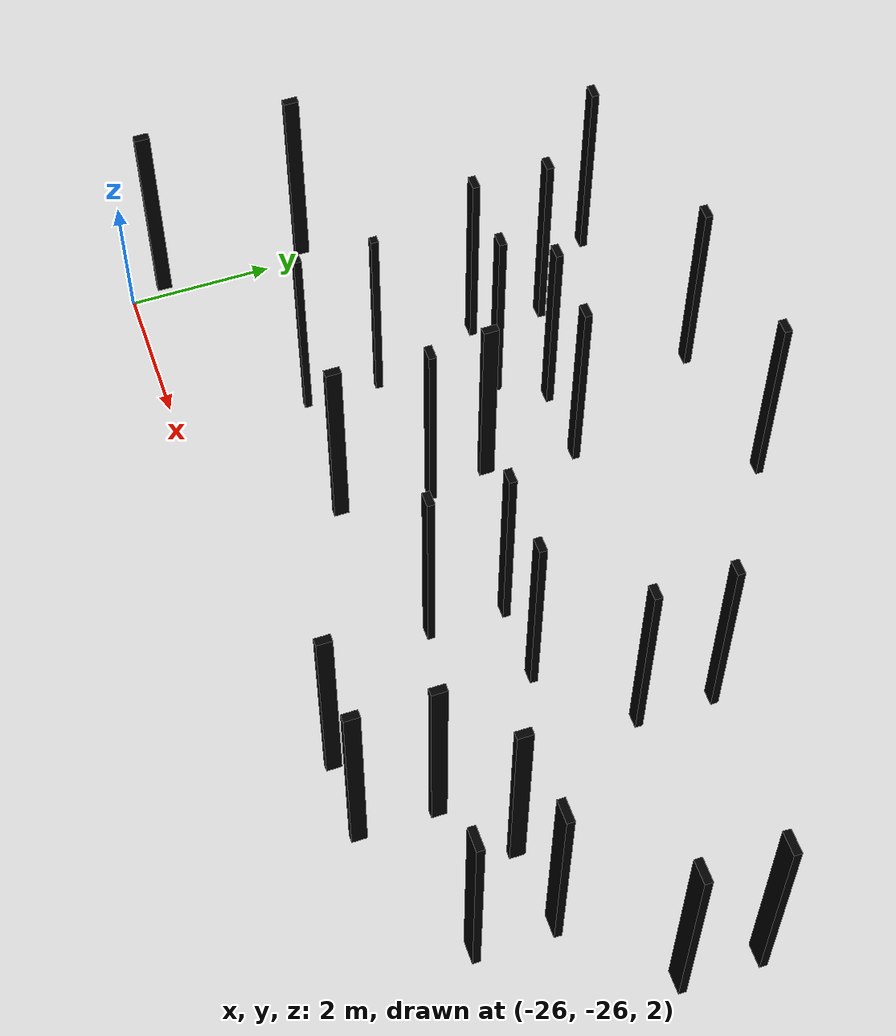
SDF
<sdf version="1.6">
 <world name="inspect">
  <light name="sun" type="directional">
   <cast_shadows>0</cast_shadows>
   <pose>0 0 10 0 -0 0</pose>
   <diffuse>1 1 1 1</diffuse>
   <specular>0.2 0.2 0.2 1</specular>
   <attenuation>
    <range>1000</range>
    <constant>0.9</constant>
    <linear>0.01</linear>
    <quadratic>0.001</quadratic>
   </attenuation>
   <direction>-0.5 -0.5 -1</direction>
  </light>
  <physics name="default_physics" default="0" type="ode">
   <max_step_size>0.005</max_step_size>
   <real_time_factor>1</real_time_factor>
   <real_time_update_rate>250</real_time_update_rate>
  </physics>
  <scene><ambient>1 1 1 1</ambient><background>1 1 1 1</background><shadows>1</shadows></scene>
  <spherical_coordinates>
   <surface_model>EARTH_WGS84</surface_model>
   <latitude_deg>0</latitude_deg>
   <longitude_deg>0</longitude_deg>
   <elevation>0</elevation>
   <heading_deg>0</heading_deg>
  </spherical_coordinates>
  <gravity>0 0 -9.8</gravity>
  <model name="box1_black">
   <static>true</static>
   <pose>-21.1 -24.4 4.3 0 0 0</pose>
   <link name="link">
    <collision name="collision"><geometry><box><size>0.1 0.2 3</size></box></geometry></collision>
    <visual name="visual">
     <geometry><box><size>0.1 0.2 3</size></box></geometry>
     <material><ambient>0 0 0 1</ambient><diffuse>0 0 0 1</diffuse></material>
    </visual>
   </link>
  </model>
  <model name="box2_green">
   <static>true</static>
   <pose>-15.8 -23.9 4.3 0 0 0</pose>
   <link name="link">
    <collision name="collision"><geometry><box><size>0.1 0.2 3</size></box></geometry></collision>
    <visual name="visual">
     <geometry><box><size>0.1 0.2 3</size></box></geometry>
     <material><ambient>0 0 0 1</ambient><diffuse>0 0 0 1</diffuse></material>
    </visual>
   </link>
  </model>
  <model name="box3_blue">
   <static>true</static>
   <pose>-13.7 -21.7 4.3 0 0 0</pose>
   <link name="link">
    <collision name="collision"><geometry><box><size>0.3 0.1 3</size></box></geometry></collision>
    <visual name="visual">
     <geometry><box><size>0.3 0.1 3</size></box></geometry>
     <material><ambient>0 0 0 1</ambient><diffuse>0 0 0 1</diffuse></material>
    </visual>
   </link>
  </model>
  <model name="box4_blue">
   <static>true</static>
   <pose>-17.0 -20.9 4.3 0 0 0</pose>
   <link name="link">
    <collision name="collision"><geometry><box><size>0.2 0.1 3</size></box></geometry></collision>
    <visual name="visual">
     <geometry><box><size>0.2 0.1 3</size></box></geometry>
     <material><ambient>0 0 0 1</ambient><diffuse>0 0 0 1</diffuse></material>
    </visual>
   </link>
  </model>
  <model name="box5_red">
   <static>true</static>
   <pose>-16.6 -24.6 4.3 0 0 0</pose>
   <link name="link">
    <collision name="collision"><geometry><box><size>0.1 0.2 3</size></box></geometry></collision>
    <visual name="visual">
     <geometry><box><size>0.1 0.2 3</size></box></geometry>
     <material><ambient>0 0 0 1</ambient><diffuse>0 0 0 1</diffuse></material>
    </visual>
   </link>
  </model>
  <model name="box6_yellow">
   <static>true</static>
   <pose>-22.9 -23.3 4.3 0 0 0</pose>
   <link name="link">
    <collision name="collision"><geometry><box><size>0.1 0.1 3</size></box></geometry></collision>
    <visual name="visual">
     <geometry><box><size>0.1 0.1 3</size></box></geometry>
     <material><ambient>0 0 0 1</ambient><diffuse>0 0 0 1</diffuse></material>
    </visual>
   </link>
  </model>
  <model name="box7_blue">
   <static>true</static>
   <pose>-22.4 -21.8 4.3 0 0 0</pose>
   <link name="link">
    <collision name="collision"><geometry><box><size>0.2 0.1 3</size></box></geometry></collision>
    <visual name="visual">
     <geometry><box><size>0.2 0.1 3</size></box></geometry>
     <material><ambient>0 0 0 1</ambient><diffuse>0 0 0 1</diffuse></material>
    </visual>
   </link>
  </model>
  <model name="box8_green">
   <static>true</static>
   <pose>-25.5 -25.6 4.3 0 0 0</pose>
   <link name="link">
    <collision name="collision"><geometry><box><size>0.1 0.2 3</size></box></geometry></collision>
    <visual name="visual">
     <geometry><box><size>0.1 0.2 3</size></box></geometry>
     <material><ambient>0 0 0 1</ambient><diffuse>0 0 0 1</diffuse></material>
    </visual>
   </link>
  </model>
  <model name="box9_black">
   <static>true</static>
   <pose>-14.8 -23.8 4.3 0 0 0</pose>
   <link name="link">
    <collision name="collision"><geometry><box><size>0.3 0.1 3</size></box></geometry></collision>
    <visual name="visual">
     <geometry><box><size>0.3 0.1 3</size></box></geometry>
     <material><ambient>0 0 0 1</ambient><diffuse>0 0 0 1</diffuse></material>
    </visual>
   </link>
  </model>
  <model name="box10_black">
   <static>true</static>
   <pose>-21.0 -21.2 4.3 0 0 0</pose>
   <link name="link">
    <collision name="collision"><geometry><box><size>0.2 0.1 3</size></box></geometry></collision>
    <visual name="visual">
     <geometry><box><size>0.2 0.1 3</size></box></geometry>
     <material><ambient>0 0 0 1</ambient><diffuse>0 0 0 1</diffuse></material>
    </visual>
   </link>
  </model>
  <model name="box10_black5">
   <static>true</static>
   <pose>-22.0 -21.2 4.3 0 0 0</pose>
   <link name="link">
    <collision name="collision"><geometry><box><size>0.2 0.1 3</size></box></geometry></collision>
    <visual name="visual">
     <geometry><box><size>0.2 0.1 3</size></box></geometry>
     <material><ambient>0 0 0 1</ambient><diffuse>0 0 0 1</diffuse></material>
    </visual>
   </link>
  </model>
  <model name="box10_black6">
   <static>true</static>
   <pose>-22.0 -19.2 4.3 0 0 0</pose>
   <link name="link">
    <collision name="collision"><geometry><box><size>0.2 0.1 3</size></box></geometry></collision>
    <visual name="visual">
     <geometry><box><size>0.2 0.1 3</size></box></geometry>
     <material><ambient>0 0 0 1</ambient><diffuse>0 0 0 1</diffuse></material>
    </visual>
   </link>
  </model>
  <model name="box1_black2">
   <static>true</static>
   <pose>-21.1 -22.4 4.3 0 0 0</pose>
   <link name="link">
    <collision name="collision"><geometry><box><size>0.1 0.2 3</size></box></geometry></collision>
    <visual name="visual">
     <geometry><box><size>0.1 0.2 3</size></box></geometry>
     <material><ambient>0 0 0 1</ambient><diffuse>0 0 0 1</diffuse></material>
    </visual>
   </link>
  </model>
  <model name="box2_green2">
   <static>true</static>
   <pose>-15.8 -23.9 4.3 0 0 0</pose>
   <link name="link">
    <collision name="collision"><geometry><box><size>0.1 0.2 3</size></box></geometry></collision>
    <visual name="visual">
     <geometry><box><size>0.1 0.2 3</size></box></geometry>
     <material><ambient>0 0 0 1</ambient><diffuse>0 0 0 1</diffuse></material>
    </visual>
   </link>
  </model>
  <model name="box3_blue2">
   <static>true</static>
   <pose>-13.7 -22.7 4.3 0 0 0</pose>
   <link name="link">
    <collision name="collision"><geometry><box><size>0.3 0.1 3</size></box></geometry></collision>
    <visual name="visual">
     <geometry><box><size>0.3 0.1 3</size></box></geometry>
     <material><ambient>0 0 0 1</ambient><diffuse>0 0 0 1</diffuse></material>
    </visual>
   </link>
  </model>
  <model name="box4_blue2">
   <static>true</static>
   <pose>-17.0 -21.9 4.3 0 0 0</pose>
   <link name="link">
    <collision name="collision"><geometry><box><size>0.2 0.1 3</size></box></geometry></collision>
    <visual name="visual">
     <geometry><box><size>0.2 0.1 3</size></box></geometry>
     <material><ambient>0 0 0 1</ambient><diffuse>0 0 0 1</diffuse></material>
    </visual>
   </link>
  </model>
  <model name="box4_blue3">
   <static>true</static>
   <pose>-18.0 -22.9 4.3 0 0 0</pose>
   <link name="link">
    <collision name="collision"><geometry><box><size>0.2 0.1 3</size></box></geometry></collision>
    <visual name="visual">
     <geometry><box><size>0.2 0.1 3</size></box></geometry>
     <material><ambient>0 0 0 1</ambient><diffuse>0 0 0 1</diffuse></material>
    </visual>
   </link>
  </model>
  <model name="box4_blue4">
   <static>true</static>
   <pose>-19.0 -22.9 4.3 0 0 0</pose>
   <link name="link">
    <collision name="collision"><geometry><box><size>0.2 0.1 3</size></box></geometry></collision>
    <visual name="visual">
     <geometry><box><size>0.2 0.1 3</size></box></geometry>
     <material><ambient>0 0 0 1</ambient><diffuse>0 0 0 1</diffuse></material>
    </visual>
   </link>
  </model>
  <model name="box4_blue9">
   <static>true</static>
   <pose>-19.0 -23.9 4.3 0 0 0</pose>
   <link name="link">
    <collision name="collision"><geometry><box><size>0.2 0.1 3</size></box></geometry></collision>
    <visual name="visual">
     <geometry><box><size>0.2 0.1 3</size></box></geometry>
     <material><ambient>0 0 0 1</ambient><diffuse>0 0 0 1</diffuse></material>
    </visual>
   </link>
  </model>
  <model name="box4_blue5">
   <static>true</static>
   <pose>-20.0 -19.0 4.3 0 0 0</pose>
   <link name="link">
    <collision name="collision"><geometry><box><size>0.2 0.1 3</size></box></geometry></collision>
    <visual name="visual">
     <geometry><box><size>0.2 0.1 3</size></box></geometry>
     <material><ambient>0 0 0 1</ambient><diffuse>0 0 0 1</diffuse></material>
    </visual>
   </link>
  </model>
  <model name="box5_red2">
   <static>true</static>
   <pose>-16.6 -25.6 4.3 0 0 0</pose>
   <link name="link">
    <collision name="collision"><geometry><box><size>0.1 0.2 3</size></box></geometry></collision>
    <visual name="visual">
     <geometry><box><size>0.1 0.2 3</size></box></geometry>
     <material><ambient>0 0 0 1</ambient><diffuse>0 0 0 1</diffuse></material>
    </visual>
   </link>
  </model>
  <model name="box5_red3">
   <static>true</static>
   <pose>-17.6 -25.6 4.3 0 0 0</pose>
   <link name="link">
    <collision name="collision"><geometry><box><size>0.1 0.2 3</size></box></geometry></collision>
    <visual name="visual">
     <geometry><box><size>0.1 0.2 3</size></box></geometry>
     <material><ambient>0 0 0 1</ambient><diffuse>0 0 0 1</diffuse></material>
    </visual>
   </link>
  </model>
  <model name="box6_yellow2">
   <static>true</static>
   <pose>-22.9 -24.3 4.3 0 0 0</pose>
   <link name="link">
    <collision name="collision"><geometry><box><size>0.1 0.1 3</size></box></geometry></collision>
    <visual name="visual">
     <geometry><box><size>0.1 0.1 3</size></box></geometry>
     <material><ambient>0 0 0 1</ambient><diffuse>0 0 0 1</diffuse></material>
    </visual>
   </link>
  </model>
  <model name="box7_blue2">
   <static>true</static>
   <pose>-22.4 -21.8 4.3 0 0 0</pose>
   <link name="link">
    <collision name="collision"><geometry><box><size>0.2 0.1 3</size></box></geometry></collision>
    <visual name="visual">
     <geometry><box><size>0.2 0.1 3</size></box></geometry>
     <material><ambient>0 0 0 1</ambient><diffuse>0 0 0 1</diffuse></material>
    </visual>
   </link>
  </model>
  <model name="box7_blue5">
   <static>true</static>
   <pose>-23.4 -21.8 4.3 0 0 0</pose>
   <link name="link">
    <collision name="collision"><geometry><box><size>0.2 0.1 3</size></box></geometry></collision>
    <visual name="visual">
     <geometry><box><size>0.2 0.1 3</size></box></geometry>
     <material><ambient>0 0 0 1</ambient><diffuse>0 0 0 1</diffuse></material>
    </visual>
   </link>
  </model>
  <model name="box7_blue6">
   <static>true</static>
   <pose>-23.4 -20.8 4.3 0 0 0</pose>
   <link name="link">
    <collision name="collision"><geometry><box><size>0.2 0.1 3</size></box></geometry></collision>
    <visual name="visual">
     <geometry><box><size>0.2 0.1 3</size></box></geometry>
     <material><ambient>0 0 0 1</ambient><diffuse>0 0 0 1</diffuse></material>
    </visual>
   </link>
  </model>
  <model name="box7_blue7">
   <static>true</static>
   <pose>-24.4 -19.8 4.3 0 0 0</pose>
   <link name="link">
    <collision name="collision"><geometry><box><size>0.2 0.1 3</size></box></geometry></collision>
    <visual name="visual">
     <geometry><box><size>0.2 0.1 3</size></box></geometry>
     <material><ambient>0 0 0 1</ambient><diffuse>0 0 0 1</diffuse></material>
    </visual>
   </link>
  </model>
  <model name="box8_green2">
   <static>true</static>
   <pose>-25.5 -23.6 4.3 0 0 0</pose>
   <link name="link">
    <collision name="collision"><geometry><box><size>0.1 0.2 3</size></box></geometry></collision>
    <visual name="visual">
     <geometry><box><size>0.1 0.2 3</size></box></geometry>
     <material><ambient>0 0 0 1</ambient><diffuse>0 0 0 1</diffuse></material>
    </visual>
   </link>
  </model>
  <model name="box9_black2">
   <static>true</static>
   <pose>-14.8 -24.8 4.3 0 0 0</pose>
   <link name="link">
    <collision name="collision"><geometry><box><size>0.3 0.1 3</size></box></geometry></collision>
    <visual name="visual">
     <geometry><box><size>0.3 0.1 3</size></box></geometry>
     <material><ambient>0 0 0 1</ambient><diffuse>0 0 0 1</diffuse></material>
    </visual>
   </link>
  </model>
  <model name="box10_black2">
   <static>true</static>
   <pose>-21.0 -23.2 4.3 0 0 0</pose>
   <link name="link">
    <collision name="collision"><geometry><box><size>0.2 0.1 3</size></box></geometry></collision>
    <visual name="visual">
     <geometry><box><size>0.2 0.1 3</size></box></geometry>
     <material><ambient>0 0 0 1</ambient><diffuse>0 0 0 1</diffuse></material>
    </visual>
   </link>
  </model>
 </world>
</sdf>
